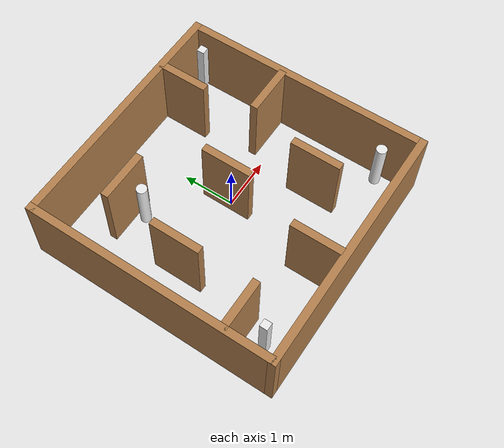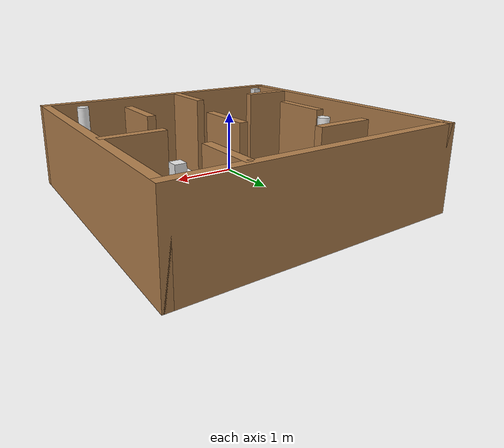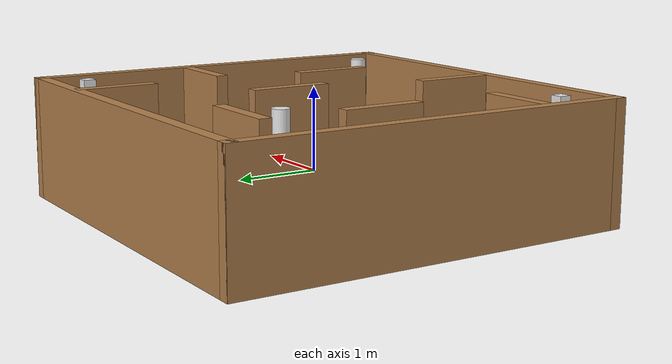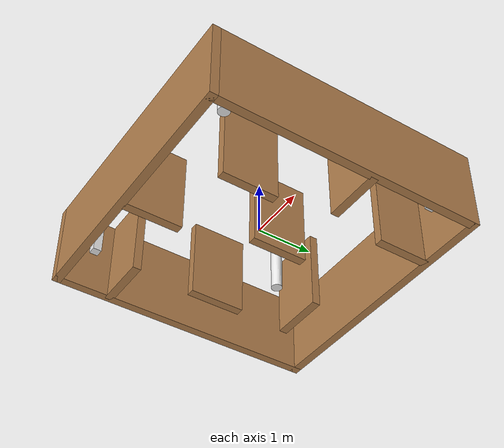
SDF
<?xml version='1.0'?>
<sdf version='1.6'>
  <model name='my_plaza'>
    <pose frame=''>0 0 0 0 -0 0</pose>
    <link name='Wall_0'>
      <collision name='Wall_0_Collision'>
        <geometry>
          <box>
            <size>5 0.15 1.5</size>
          </box>
        </geometry>
        <pose frame=''>0 0 0.25 0 -0 0</pose>
      </collision>
      <visual name='Wall_0_Visual'>
        <pose frame=''>0 0 0.25 0 -0 0</pose>
        <geometry>
          <box>
            <size>5 0.15 1.5</size>
          </box>
        </geometry>
        <material>
          <script>
            <uri>file://media/materials/scripts/gazebo.material</uri>
            <name>Gazebo/Wood</name>
          </script>
          <ambient>1 1 1 1</ambient>
        </material>
      </visual>
      <pose frame=''>-2.425 0 0 0 -0 1.5708</pose>
    </link>

    <link name='Cylinder_1'>
      <collision name='Cylinder_1_Collision'>
        <geometry>
          <cylinder>
            <radius>0.1</radius>
            <length>1</length>
          </cylinder>
        </geometry>
        <pose frame=''>0 0 0.25 0 -0 0</pose>
      </collision>
      <visual name='Cylinder_1_Visual'>
        <pose frame=''>0 0 0.25 0 -0 0</pose>
        <geometry>
          <cylinder>
            <radius>0.1</radius>
            <length>1</length>
          </cylinder>
        </geometry>
        <material>
          <script>
            <uri>file://media/materials/scripts/gazebo.material</uri>
            <name>Gazebo/White</name>
          </script>
          <ambient>1 1 1 1</ambient>
        </material>
      </visual>
      <pose frame=''>1.9 -1.9 0.25 0 -0 0</pose>
    </link>

    <link name='Cylinder_2'>
      <collision name='Cylinder_2_Collision'>
        <geometry>
          <cylinder>
            <radius>0.1</radius>
            <length>1</length>
          </cylinder>
        </geometry>
        <pose frame=''>0 0 0.25 0 -0 0</pose>
      </collision>
      <visual name='Cylinder_2_Visual'>
        <pose frame=''>0 0 0.25 0 -0 0</pose>
        <geometry>
          <cylinder>
            <radius>0.1</radius>
            <length>1</length>
          </cylinder>
        </geometry>
        <material>
          <script>
            <uri>file://media/materials/scripts/gazebo.material</uri>
            <name>Gazebo/White</name>
          </script>
          <ambient>1 1 1 1</ambient>
        </material>
      </visual>
      <pose frame=''>-1.1 1.1 0.25 0 -0 0</pose>
    </link>

    <link name='Box_1'>
      <collision name='Box_1_Collision'>
        <geometry>
          <box>
            <size>0.15 0.15 1</size>
          </box>
        </geometry>
        <pose frame=''>0 0 0.25 0 -0 0</pose>
      </collision>
      <visual name='Box_1_Visual'>
        <pose frame=''>0 0 0.25 0 -0 0</pose>
        <geometry>
          <box>
            <size>0.15 0.15 1</size>
          </box>
        </geometry>
        <material>
          <script>
            <uri>file://media/materials/scripts/gazebo.material</uri>
            <name>Gazebo/White</name>
          </script>
          <ambient>1 1 1 1</ambient>
        </material>
      </visual>
      <pose frame=''>2 2 0.25 0 -0 0</pose>
    </link>

    <link name='Box_2'>
      <collision name='Box_2_Collision'>
        <geometry>
          <box>
            <size>0.15 0.15 1</size>
          </box>
        </geometry>
        <pose frame=''>0 0 0.25 0 -0 0</pose>
      </collision>
      <visual name='Box_2_Visual'>
        <pose frame=''>0 0 0.25 0 -0 0</pose>
        <geometry>
          <box>
            <size>0.15 0.15 1</size>
          </box>
        </geometry>
        <material>
          <script>
            <uri>file://media/materials/scripts/gazebo.material</uri>
            <name>Gazebo/White</name>
          </script>
          <ambient>1 1 1 1</ambient>
        </material>
      </visual>
      <pose frame=''>-2 -2 0.25 0 -0 0</pose>
    </link>

    <link name='Wall_11'>
      <collision name='Wall_11_Collision'>
        <geometry>
          <box>
            <size>1 0.15 1.5</size>
          </box>
        </geometry>
        <pose frame=''>0 0 0.25 0 -0 0</pose>
      </collision>
      <visual name='Wall_11_Visual'>
        <pose frame=''>0 0 0.25 0 -0 0</pose>
        <geometry>
          <box>
            <size>1 0.15 1.5</size>
          </box>
        </geometry>
        <material>
          <script>
            <uri>file://media/materials/scripts/gazebo.material</uri>
            <name>Gazebo/Wood</name>
          </script>
          <ambient>1 1 1 1</ambient>
        </material>
      </visual>
      <pose frame=''>-1.937 -1.467 0 0 -0 0</pose>
    </link>
    <link name='Wall_13'>
      <collision name='Wall_13_Collision'>
        <geometry>
          <box>
            <size>1 0.15 1.5</size>
          </box>
        </geometry>
        <pose frame=''>0 0 0.25 0 -0 0</pose>
      </collision>
      <visual name='Wall_13_Visual'>
        <pose frame=''>0 0 0.25 0 -0 0</pose>
        <geometry>
          <box>
            <size>1 0.15 1.5</size>
          </box>
        </geometry>
        <material>
          <script>
            <uri>file://media/materials/scripts/gazebo.material</uri>
            <name>Gazebo/Wood</name>
          </script>
          <ambient>1 1 1 1</ambient>
        </material>
      </visual>
      <pose frame=''>-0.22 -1.866 0 0 0 -1.5708</pose>
    </link>
    <link name='Wall_15'>
      <collision name='Wall_15_Collision'>
        <geometry>
          <box>
            <size>1 0.15 1.5</size>
          </box>
        </geometry>
        <pose frame=''>0 0 0.25 0 -0 0</pose>
      </collision>
      <visual name='Wall_15_Visual'>
        <pose frame=''>0 0 0.25 0 -0 0</pose>
        <geometry>
          <box>
            <size>1 0.15 1.5</size>
          </box>
        </geometry>
        <material>
          <script>
            <uri>file://media/materials/scripts/gazebo.material</uri>
            <name>Gazebo/Wood</name>
          </script>
          <ambient>1 1 1 1</ambient>
        </material>
      </visual>
      <pose frame=''>1.195 -1.002 0 0 -0 1.5708</pose>
    </link>
    <link name='Wall_17'>
      <collision name='Wall_17_Collision'>
        <geometry>
          <box>
            <size>1 0.15 1.5</size>
          </box>
        </geometry>
        <pose frame=''>0 0 0.25 0 -0 0</pose>
      </collision>
      <visual name='Wall_17_Visual'>
        <pose frame=''>0 0 0.25 0 -0 0</pose>
        <geometry>
          <box>
            <size>1 0.15 1.5</size>
          </box>
        </geometry>
        <material>
          <script>
            <uri>file://media/materials/scripts/gazebo.material</uri>
            <name>Gazebo/Wood</name>
          </script>
          <ambient>1 1 1 1</ambient>
        </material>
      </visual>
      <pose frame=''>1.288 1.93 0 0 0 -1.5708</pose>
    </link>
    <link name='Wall_19'>
      <collision name='Wall_19_Collision'>
        <geometry>
          <box>
            <size>1 0.15 1.5</size>
          </box>
        </geometry>
        <pose frame=''>0 0 0.25 0 -0 0</pose>
      </collision>
      <visual name='Wall_19_Visual'>
        <pose frame=''>0 0 0.25 0 -0 0</pose>
        <geometry>
          <box>
            <size>1 0.15 1.5</size>
          </box>
        </geometry>
        <material>
          <script>
            <uri>file://media/materials/scripts/gazebo.material</uri>
            <name>Gazebo/Wood</name>
          </script>
          <ambient>1 1 1 1</ambient>
        </material>
      </visual>
      <pose frame=''>1.91128 0.4632 0 0 -0 0</pose>
    </link>
    <link name='Wall_2'>
      <collision name='Wall_2_Collision'>
        <geometry>
          <box>
            <size>5 0.15 1.5</size>
          </box>
        </geometry>
        <pose frame=''>0 0 0.25 0 -0 0</pose>
      </collision>
      <visual name='Wall_2_Visual'>
        <pose frame=''>0 0 0.25 0 -0 0</pose>
        <geometry>
          <box>
            <size>5 0.15 1.5</size>
          </box>
        </geometry>
        <material>
          <script>
            <uri>file://media/materials/scripts/gazebo.material</uri>
            <name>Gazebo/Wood</name>
          </script>
          <ambient>1 1 1 1</ambient>
        </material>
      </visual>
      <pose frame=''>0 2.425 0 0 -0 0</pose>
    </link>
    <link name='Wall_21'>
      <collision name='Wall_21_Collision'>
        <geometry>
          <box>
            <size>1 0.15 1.5</size>
          </box>
        </geometry>
        <pose frame=''>0 0 0.25 0 -0 0</pose>
      </collision>
      <visual name='Wall_21_Visual'>
        <pose frame=''>0 0 0.25 0 -0 0</pose>
        <geometry>
          <box>
            <size>1 0.15 1.5</size>
          </box>
        </geometry>
        <material>
          <script>
            <uri>file://media/materials/scripts/gazebo.material</uri>
            <name>Gazebo/Wood</name>
          </script>
          <ambient>1 1 1 1</ambient>
        </material>
      </visual>
      <pose frame=''>0.204 0.215 0 0 0 -1.5708</pose>
    </link>
    <link name='Wall_3'>
      <collision name='Wall_3_Collision'>
        <geometry>
          <box>
            <size>5 0.15 1.5</size>
          </box>
        </geometry>
        <pose frame=''>0 0 0.25 0 -0 0</pose>
      </collision>
      <visual name='Wall_3_Visual'>
        <pose frame=''>0 0 0.25 0 -0 0</pose>
        <geometry>
          <box>
            <size>5 0.15 1.5</size>
          </box>
        </geometry>
        <material>
          <script>
            <uri>file://media/materials/scripts/gazebo.material</uri>
            <name>Gazebo/Wood</name>
          </script>
          <ambient>1 1 1 1</ambient>
        </material>
      </visual>
      <pose frame=''>2.425 0 0 0 0 -1.5708</pose>
    </link>
    <link name='Wall_4'>
      <collision name='Wall_4_Collision'>
        <geometry>
          <box>
            <size>5 0.15 1.5</size>
          </box>
        </geometry>
        <pose frame=''>0 0 0.25 0 -0 0</pose>
      </collision>
      <visual name='Wall_4_Visual'>
        <pose frame=''>0 0 0.25 0 -0 0</pose>
        <geometry>
          <box>
            <size>5 0.15 1.5</size>
          </box>
        </geometry>
        <material>
          <script>
            <uri>file://media/materials/scripts/gazebo.material</uri>
            <name>Gazebo/Wood</name>
          </script>
          <ambient>1 1 1 1</ambient>
        </material>
      </visual>
      <pose frame=''>0 -2.425 0 0 -0 3.14159</pose>
    </link>
    <link name='Wall_7'>
      <collision name='Wall_7_Collision'>
        <geometry>
          <box>
            <size>1 0.15 1.5</size>
          </box>
        </geometry>
        <pose frame=''>0 0 0.25 0 -0 0</pose>
      </collision>
      <visual name='Wall_7_Visual'>
        <pose frame=''>0 0 0.25 0 -0 0</pose>
        <geometry>
          <box>
            <size>1 0.15 1.5</size>
          </box>
        </geometry>
        <material>
          <script>
            <uri>file://media/materials/scripts/gazebo.material</uri>
            <name>Gazebo/Wood</name>
          </script>
          <ambient>1 1 1 1</ambient>
        </material>
      </visual>
      <pose frame=''>-1.064 1.548 0 0 -0 0</pose>
    </link>
    <link name='Wall_9'>
      <collision name='Wall_9_Collision'>
        <geometry>
          <box>
            <size>1 0.15 1.5</size>
          </box>
        </geometry>
        <pose frame=''>0 0 0.25 0 -0 0</pose>
      </collision>
      <visual name='Wall_9_Visual'>
        <pose frame=''>0 0 0.25 0 -0 0</pose>
        <geometry>
          <box>
            <size>1 0.15 1.5</size>
          </box>
        </geometry>
        <material>
          <script>
            <uri>file://media/materials/scripts/gazebo.material</uri>
            <name>Gazebo/Wood</name>
          </script>
          <ambient>1 1 1 1</ambient>
        </material>
      </visual>
      <pose frame=''>-1.502 0.092 0 0 0 -1.5708</pose>
    </link>
    <static>1</static>
  </model>
</sdf>
